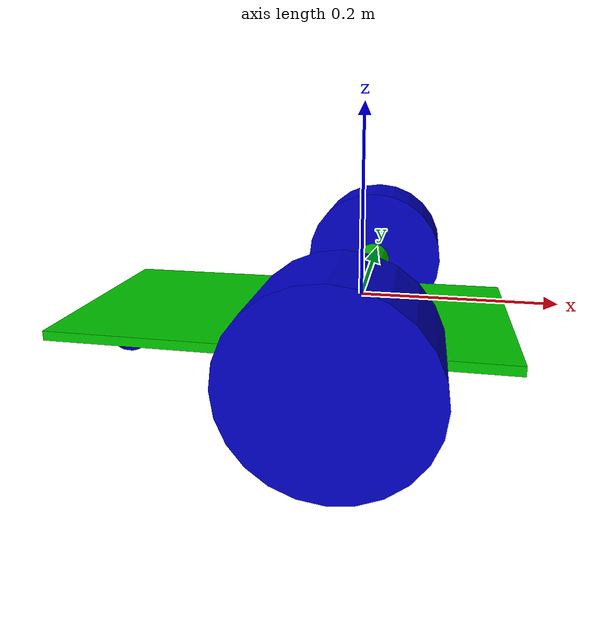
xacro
<?xml version="1.0"?>
<robot xmlns:xacro="http://www.ros.org/wiki/xacro">

    <xacro:include filename="inertial_macros.xacro"/>

    <material name="blue">
        <color rgba="0 0 0.8 1"/>
    </material>

    <material name="green">
        <color rgba="0 0.8 0 1"/>
    </material>

    <material name="orange">
        <color rgba="1 0.3 0.1 1"/>
    </material>

    <material name="white">
        <color rgba="1 1 1 1"/>
    </material>

    <material name="black">
        <color rgba="0 0 0 1"/>
    </material>

    <!--BASE LINK-->

    <link name="base_link">
    </link>

    <!--CHASSIS (BOX) LINK-->

    <link name="box_link">
        <visual>
            <geometry>
                <box size="0.46 0.22 0.01"/>
            </geometry>
            <material name="green"/>
            <origin xyz="0.23 0 0.005" rpy="0 0 0"/>
        </visual>
        <collision>
            <geometry>
                <box size="0.46 0.22 0.01"/>
            </geometry>
            <origin xyz="0.23 0 0.005" rpy="0 0 0"/>
        </collision>
        <xacro:inertial_box mass="2" x="0.46" y="0.22" z="0.01">
            <origin xyz="0.23 0 0.005" rpy="0 0 0"/>
        </xacro:inertial_box>
    </link>

    <gazebo reference="chassis">
        <material>Gazebo/White</material>
    </gazebo>

    <joint name="base_to_box_joint" type="fixed">
        <parent link="base_link"/>
        <child link="box_link"/>
        <origin xyz="-0.305 0 -0.03" rpy="0 0 0"/>
    </joint>

    <!--WHEEL AXIS-->

    <link name="wheel_axis">
        <visual>
            <geometry>
                <cylinder length="0.375" radius="0.02"/>
            </geometry>
            <origin xyz="0 0 0" rpy="${pi/2} 0 0"/>
            <material name="green"/>
        </visual>
        <collision>
            <geometry>
                <cylinder length="0.375" radius="0.02"/>
            </geometry>
            <origin xyz="0 0 0" rpy="${pi/2} 0 0"/>
        </collision>
        <xacro:inertial_cylinder mass="0.5" length="0.375" radius="0.02">
            <origin xyz="0 0 0" rpy="${pi/2} 0 0"/>
        </xacro:inertial_cylinder>
    </link>

    <gazebo reference="wheel_axis_link">
        <material>Gazebo/Green</material>
    </gazebo>

    <joint name="base_to_wheel_axis" type="fixed">
        <parent link="base_link"/>
        <child link="wheel_axis"/>
        <origin xyz="0 0 0" rpy="0 0 0"/>
    </joint>

    <!--LEFT WHEEL-->

    <link name="left_wheel">
        <visual>
            <geometry>
                <cylinder length="0.09" radius="0.085"/>
            </geometry>
            <origin xyz="0 0 0" rpy="0 0 0"/>
            <material name="blue"/>
        </visual>
        <collision>
            <geometry>
                <cylinder length="0.09" radius="0.085"/>
            </geometry>
            <origin xyz="0 0 0" rpy="0 0 0"/>
        </collision>
        <xacro:inertial_cylinder mass="0.25" length="0.09" radius="0.085">
            <origin xyz="0 0 0" rpy="0 0 0"/>
        </xacro:inertial_cylinder>
    </link>

    <gazebo reference="left_wheel">
        <material>Gazebo/Blue</material>
    </gazebo>

    <joint name="base_to_left_wheel" type="continuous">
        <parent link="base_link"/>
        <child link="left_wheel"/>
        <origin xyz="0 0.1875 0" rpy="-${pi/2} 0 0"/>
        <axis xyz="0 0 1"/>
    </joint>

    <!--RIGHT WHEEL-->

    <link name="right_wheel">
        <visual>
            <geometry>
                <cylinder length="0.09" radius="0.085"/>
            </geometry>
            <origin xyz="0 0 0" rpy="0 0 0"/>
            <material name="blue"/>
        </visual>
        <collision>
            <geometry>
                <cylinder length="0.09" radius="0.085"/>
            </geometry>
            <origin xyz="0 0 0" rpy="0 0 0"/>
        </collision>
        <xacro:inertial_cylinder mass="0.25" length="0.09" radius="0.085">
            <origin xyz="0 0 0" rpy="0 0 0"/>
        </xacro:inertial_cylinder>
    </link>

    <gazebo reference="right_wheel">
        <material>Gazebo/Blue</material>
    </gazebo>

    <joint name="base_to_right_wheel" type="continuous">
        <parent link="base_link"/>
        <child link="right_wheel"/>
        <origin xyz="0 -0.1875 0" rpy="${pi/2} 0 0"/>
        <axis xyz="0 0 -1"/>
    </joint>

    <!--PIVOT (CASTER WHEEL) LINK-->

    <link name="rear_pivot">
        <visual>
            <geometry>
                <sphere radius="0.025"/>
            </geometry>
            <origin xyz="0 0 0" rpy="0 0 0"/>
            <material name="blue"/>
        </visual>
        <collision>
            <geometry>
                <sphere radius="0.025"/>
            </geometry>
            <origin xyz="0 0 0" rpy="0 0 0"/>
        </collision>
        <xacro:inertial_sphere mass="0.1" radius="0.025">
            <origin xyz="0 0 0" rpy="0 0 0"/>
        </xacro:inertial_sphere>
    </link>

    <gazebo reference="rear_pivot">
        <material>Gazebo/Blue</material>
        <mu1 value="0.001"/>
        <mu2 value="0.001"/>
    </gazebo>

    <joint name="base_to_rear_pivot" type="fixed">
        <parent link="base_link"/>
        <child link="rear_pivot"/>
        <origin xyz="-0.27 0 -0.06"/>
    </joint>

</robot>
